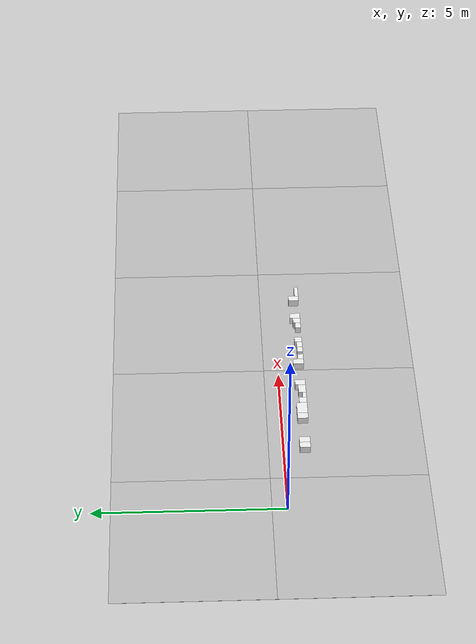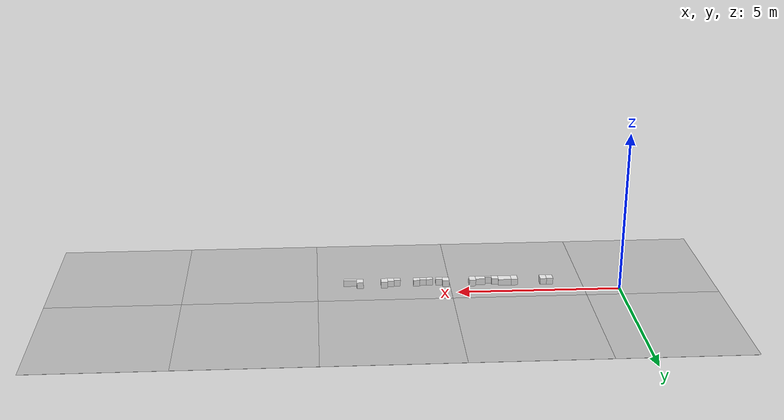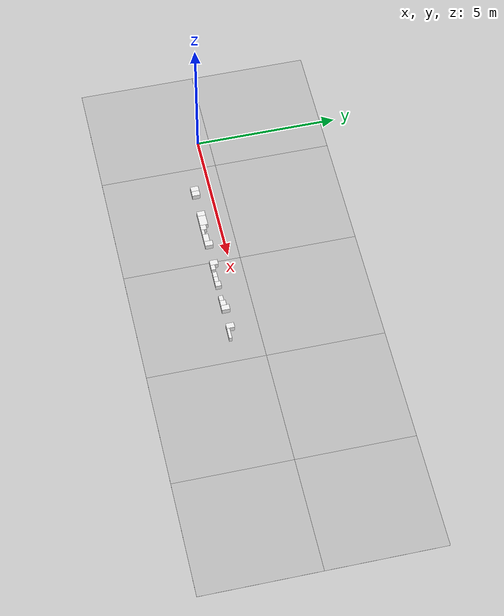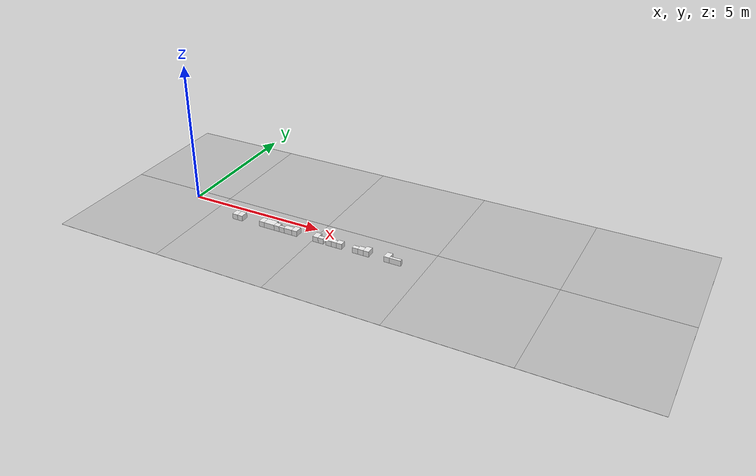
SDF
<sdf version="1.6">
 <world name="default">
  <model name="Tile/0-0">
   <static>1</static>
   <link name="link">
    <collision name="collision">
     <geometry><plane><normal>0 0 1</normal><size>4.096 4.096</size></plane></geometry>
     <surface><friction><ode><mu>100</mu><mu2>50</mu2></ode></friction></surface>
    </collision>
    <visual name="visual">
     <cast_shadows>0</cast_shadows>
     <geometry><plane><normal>0 0 1</normal><size>4.096 4.096</size></plane></geometry>
     <material>
      <script>
       <uri>file://materials/scripts</uri>
       <uri>file://materials/textures</uri>
       <name>Tile/aa44efc093d15b0d016b671cb8dad8b9b5925cd42bc6b331ef31decf4ba6863e</name>
      </script>
      <specular>1 1 1 1</specular>
     </material>
    </visual>
   </link>
   <pose>-0.952 -1.6520000000000001 0 0 -0 0</pose>
  </model>
  <model name="Tile/0-1">
   <static>1</static>
   <link name="link">
    <collision name="collision">
     <geometry><plane><normal>0 0 1</normal><size>4.096 4.096</size></plane></geometry>
     <surface><friction><ode><mu>100</mu><mu2>50</mu2></ode></friction></surface>
    </collision>
    <visual name="visual">
     <cast_shadows>0</cast_shadows>
     <geometry><plane><normal>0 0 1</normal><size>4.096 4.096</size></plane></geometry>
     <material>
      <script>
       <uri>file://materials/scripts</uri>
       <uri>file://materials/textures</uri>
       <name>Tile/6681b896b1587d54cb69aadeb5fb7247b4d6d500490292053e67105ac88ca889</name>
      </script>
      <specular>1 1 1 1</specular>
     </material>
    </visual>
   </link>
   <pose>-0.952 2.444 0 0 -0 0</pose>
  </model>
  <model name="Tile/1-0">
   <static>1</static>
   <link name="link">
    <collision name="collision">
     <geometry><plane><normal>0 0 1</normal><size>4.096 4.096</size></plane></geometry>
     <surface><friction><ode><mu>100</mu><mu2>50</mu2></ode></friction></surface>
    </collision>
    <visual name="visual">
     <cast_shadows>0</cast_shadows>
     <geometry><plane><normal>0 0 1</normal><size>4.096 4.096</size></plane></geometry>
     <material>
      <script>
       <uri>file://materials/scripts</uri>
       <uri>file://materials/textures</uri>
       <name>Tile/067768fed152a856bd9031b7e36a3f99bebca5a5b10e7e607b28bbce7ae49069</name>
      </script>
      <specular>1 1 1 1</specular>
     </material>
    </visual>
   </link>
   <pose>3.144 -1.6520000000000001 0 0 -0 0</pose>
  </model>
  <model name="Tile/1-1">
   <static>1</static>
   <link name="link">
    <collision name="collision">
     <geometry><plane><normal>0 0 1</normal><size>4.096 4.096</size></plane></geometry>
     <surface><friction><ode><mu>100</mu><mu2>50</mu2></ode></friction></surface>
    </collision>
    <visual name="visual">
     <cast_shadows>0</cast_shadows>
     <geometry><plane><normal>0 0 1</normal><size>4.096 4.096</size></plane></geometry>
     <material>
      <script>
       <uri>file://materials/scripts</uri>
       <uri>file://materials/textures</uri>
       <name>Tile/13957a6de1f2afce18d7f1f64dacc2f21295e26ccf498256b0e1a51002cd5706</name>
      </script>
      <specular>1 1 1 1</specular>
     </material>
    </visual>
   </link>
   <pose>3.144 2.444 0 0 -0 0</pose>
  </model>
  <model name="Tile/2-0">
   <static>1</static>
   <link name="link">
    <collision name="collision">
     <geometry><plane><normal>0 0 1</normal><size>4.096 4.096</size></plane></geometry>
     <surface><friction><ode><mu>100</mu><mu2>50</mu2></ode></friction></surface>
    </collision>
    <visual name="visual">
     <cast_shadows>0</cast_shadows>
     <geometry><plane><normal>0 0 1</normal><size>4.096 4.096</size></plane></geometry>
     <material>
      <script>
       <uri>file://materials/scripts</uri>
       <uri>file://materials/textures</uri>
       <name>Tile/e7657f4a61de8bff8be1426595bf344f4a6bc20f63372e82761f2523c6b05b99</name>
      </script>
      <specular>1 1 1 1</specular>
     </material>
    </visual>
   </link>
   <pose>7.24 -1.6520000000000001 0 0 -0 0</pose>
  </model>
  <model name="Tile/2-1">
   <static>1</static>
   <link name="link">
    <collision name="collision">
     <geometry><plane><normal>0 0 1</normal><size>4.096 4.096</size></plane></geometry>
     <surface><friction><ode><mu>100</mu><mu2>50</mu2></ode></friction></surface>
    </collision>
    <visual name="visual">
     <cast_shadows>0</cast_shadows>
     <geometry><plane><normal>0 0 1</normal><size>4.096 4.096</size></plane></geometry>
     <material>
      <script>
       <uri>file://materials/scripts</uri>
       <uri>file://materials/textures</uri>
       <name>Tile/13957a6de1f2afce18d7f1f64dacc2f21295e26ccf498256b0e1a51002cd5706</name>
      </script>
      <specular>1 1 1 1</specular>
     </material>
    </visual>
   </link>
   <pose>7.24 2.444 0 0 -0 0</pose>
  </model>
  <model name="Tile/3-0">
   <static>1</static>
   <link name="link">
    <collision name="collision">
     <geometry><plane><normal>0 0 1</normal><size>4.096 4.096</size></plane></geometry>
     <surface><friction><ode><mu>100</mu><mu2>50</mu2></ode></friction></surface>
    </collision>
    <visual name="visual">
     <cast_shadows>0</cast_shadows>
     <geometry><plane><normal>0 0 1</normal><size>4.096 4.096</size></plane></geometry>
     <material>
      <script>
       <uri>file://materials/scripts</uri>
       <uri>file://materials/textures</uri>
       <name>Tile/9ea4c64e76d6396e83842c66d9e0cf046f2b53fc1970a18100aba851c5b525dc</name>
      </script>
      <specular>1 1 1 1</specular>
     </material>
    </visual>
   </link>
   <pose>11.336 -1.6520000000000001 0 0 -0 0</pose>
  </model>
  <model name="Tile/3-1">
   <static>1</static>
   <link name="link">
    <collision name="collision">
     <geometry><plane><normal>0 0 1</normal><size>4.096 4.096</size></plane></geometry>
     <surface><friction><ode><mu>100</mu><mu2>50</mu2></ode></friction></surface>
    </collision>
    <visual name="visual">
     <cast_shadows>0</cast_shadows>
     <geometry><plane><normal>0 0 1</normal><size>4.096 4.096</size></plane></geometry>
     <material>
      <script>
       <uri>file://materials/scripts</uri>
       <uri>file://materials/textures</uri>
       <name>Tile/9a23bc0f4e214852a2847a84344e8046d230fcc65b31d78c9942eccd3ef414bb</name>
      </script>
      <specular>1 1 1 1</specular>
     </material>
    </visual>
   </link>
   <pose>11.336 2.444 0 0 -0 0</pose>
  </model>
  <model name="Tile/4-0">
   <static>1</static>
   <link name="link">
    <collision name="collision">
     <geometry><plane><normal>0 0 1</normal><size>4.096 4.096</size></plane></geometry>
     <surface><friction><ode><mu>100</mu><mu2>50</mu2></ode></friction></surface>
    </collision>
    <visual name="visual">
     <cast_shadows>0</cast_shadows>
     <geometry><plane><normal>0 0 1</normal><size>4.096 4.096</size></plane></geometry>
     <material>
      <script>
       <uri>file://materials/scripts</uri>
       <uri>file://materials/textures</uri>
       <name>Tile/5eab350b8220ac9944dbdfa4ac3288c7c17e24c3bf5df0dfcf6173d64dae00a1</name>
      </script>
      <specular>1 1 1 1</specular>
     </material>
    </visual>
   </link>
   <pose>15.431999999999999 -1.6520000000000001 0 0 -0 0</pose>
  </model>
  <model name="Tile/4-1">
   <static>1</static>
   <link name="link">
    <collision name="collision">
     <geometry><plane><normal>0 0 1</normal><size>4.096 4.096</size></plane></geometry>
     <surface><friction><ode><mu>100</mu><mu2>50</mu2></ode></friction></surface>
    </collision>
    <visual name="visual">
     <cast_shadows>0</cast_shadows>
     <geometry><plane><normal>0 0 1</normal><size>4.096 4.096</size></plane></geometry>
     <material>
      <script>
       <uri>file://materials/scripts</uri>
       <uri>file://materials/textures</uri>
       <name>Tile/5eab350b8220ac9944dbdfa4ac3288c7c17e24c3bf5df0dfcf6173d64dae00a1</name>
      </script>
      <specular>1 1 1 1</specular>
     </material>
    </visual>
   </link>
   <pose>15.431999999999999 2.444 0 0 -0 0</pose>
  </model>
  <model name="Obstacle/-5/0">
   <pose>2.1 -0.5599999999999999 0.1 0 0 -0.0</pose>
   <link name="link">
    <inertial>
     <mass>10</mass>
     <inertia>
      <ixx>0.166667</ixx>
      <ixy>0</ixy>
      <ixz>0</ixz>
      <iyy>0.166667</iyy>
      <iyz>0</iyz>
      <izz>0.166667</izz>
     </inertia>
    </inertial>
    <collision name="collision"><geometry><box><size>0.2 0.28 0.2</size></box></geometry></collision>
    <visual name="visual">
     <geometry><box><size>0.2 0.28 0.2</size></box></geometry>
     <material>
      <script><name>Gazebo/White</name><uri>file://media/materials/scripts/gazebo.material</uri></script>
     </material>
    </visual>
   </link>
  </model>
  <model name="Obstacle/-9/0">
   <pose>2.3000000000000003 -0.5599999999999999 0.1 0 0 -0.0</pose>
   <link name="link">
    <inertial>
     <mass>10</mass>
     <inertia>
      <ixx>0.166667</ixx>
      <ixy>0</ixy>
      <ixz>0</ixz>
      <iyy>0.166667</iyy>
      <iyz>0</iyz>
      <izz>0.166667</izz>
     </inertia>
    </inertial>
    <collision name="collision"><geometry><box><size>0.2 0.28 0.2</size></box></geometry></collision>
    <visual name="visual">
     <geometry><box><size>0.2 0.28 0.2</size></box></geometry>
     <material>
      <script><name>Gazebo/White</name><uri>file://media/materials/scripts/gazebo.material</uri></script>
     </material>
    </visual>
   </link>
  </model>
  <model name="Obstacle/-16/0">
   <pose>3.2000000000000006 -0.5599999999999999 0.1 0 0 -0.0</pose>
   <link name="link">
    <inertial>
     <mass>10</mass>
     <inertia>
      <ixx>0.166667</ixx>
      <ixy>0</ixy>
      <ixz>0</ixz>
      <iyy>0.166667</iyy>
      <iyz>0</iyz>
      <izz>0.166667</izz>
     </inertia>
    </inertial>
    <collision name="collision"><geometry><box><size>0.2 0.28 0.2</size></box></geometry></collision>
    <visual name="visual">
     <geometry><box><size>0.2 0.28 0.2</size></box></geometry>
     <material>
      <script><name>Gazebo/White</name><uri>file://media/materials/scripts/gazebo.material</uri></script>
     </material>
    </visual>
   </link>
  </model>
  <model name="Obstacle/-20/0">
   <pose>3.500000000000001 -0.5599999999999999 0.1 0 0 -0.0</pose>
   <link name="link">
    <inertial>
     <mass>10</mass>
     <inertia>
      <ixx>0.166667</ixx>
      <ixy>0</ixy>
      <ixz>0</ixz>
      <iyy>0.166667</iyy>
      <iyz>0</iyz>
      <izz>0.166667</izz>
     </inertia>
    </inertial>
    <collision name="collision"><geometry><box><size>0.4 0.28 0.2</size></box></geometry></collision>
    <visual name="visual">
     <geometry><box><size>0.4 0.28 0.2</size></box></geometry>
     <material>
      <script><name>Gazebo/White</name><uri>file://media/materials/scripts/gazebo.material</uri></script>
     </material>
    </visual>
   </link>
  </model>
  <model name="Obstacle/-24/0">
   <pose>3.8000000000000007 -0.6 0.1 0 0 -0.0</pose>
   <link name="link">
    <inertial>
     <mass>10</mass>
     <inertia>
      <ixx>0.166667</ixx>
      <ixy>0</ixy>
      <ixz>0</ixz>
      <iyy>0.166667</iyy>
      <iyz>0</iyz>
      <izz>0.166667</izz>
     </inertia>
    </inertial>
    <collision name="collision"><geometry><box><size>0.2 0.2 0.2</size></box></geometry></collision>
    <visual name="visual">
     <geometry><box><size>0.2 0.2 0.2</size></box></geometry>
     <material>
      <script><name>Gazebo/White</name><uri>file://media/materials/scripts/gazebo.material</uri></script>
     </material>
    </visual>
   </link>
  </model>
  <model name="Obstacle/-28/0">
   <pose>4.000000000000001 -0.6499999999999999 0.1 0 0 -0.0</pose>
   <link name="link">
    <inertial>
     <mass>10</mass>
     <inertia>
      <ixx>0.166667</ixx>
      <ixy>0</ixy>
      <ixz>0</ixz>
      <iyy>0.166667</iyy>
      <iyz>0</iyz>
      <izz>0.166667</izz>
     </inertia>
    </inertial>
    <collision name="collision"><geometry><box><size>0.2 0.1 0.2</size></box></geometry></collision>
    <visual name="visual">
     <geometry><box><size>0.2 0.1 0.2</size></box></geometry>
     <material>
      <script><name>Gazebo/White</name><uri>file://media/materials/scripts/gazebo.material</uri></script>
     </material>
    </visual>
   </link>
  </model>
  <model name="Obstacle/-32/0">
   <pose>4.250000000000001 -0.6 0.1 0 0 -0.0</pose>
   <link name="link">
    <inertial>
     <mass>10</mass>
     <inertia>
      <ixx>0.166667</ixx>
      <ixy>0</ixy>
      <ixz>0</ixz>
      <iyy>0.166667</iyy>
      <iyz>0</iyz>
      <izz>0.166667</izz>
     </inertia>
    </inertial>
    <collision name="collision"><geometry><box><size>0.3 0.2 0.2</size></box></geometry></collision>
    <visual name="visual">
     <geometry><box><size>0.3 0.2 0.2</size></box></geometry>
     <material>
      <script><name>Gazebo/White</name><uri>file://media/materials/scripts/gazebo.material</uri></script>
     </material>
    </visual>
   </link>
  </model>
  <model name="Obstacle/-36/0">
   <pose>4.5 -0.5599999999999999 0.1 0 0 -0.0</pose>
   <link name="link">
    <inertial>
     <mass>10</mass>
     <inertia>
      <ixx>0.166667</ixx>
      <ixy>0</ixy>
      <ixz>0</ixz>
      <iyy>0.166667</iyy>
      <iyz>0</iyz>
      <izz>0.166667</izz>
     </inertia>
    </inertial>
    <collision name="collision"><geometry><box><size>0.2 0.28 0.2</size></box></geometry></collision>
    <visual name="visual">
     <geometry><box><size>0.2 0.28 0.2</size></box></geometry>
     <material>
      <script><name>Gazebo/White</name><uri>file://media/materials/scripts/gazebo.material</uri></script>
     </material>
    </visual>
   </link>
  </model>
  <model name="Obstacle/-43/0">
   <pose>5.33 -0.5599999999999999 0.1 0 0 -0.0</pose>
   <link name="link">
    <inertial>
     <mass>10</mass>
     <inertia>
      <ixx>0.166667</ixx>
      <ixy>0</ixy>
      <ixz>0</ixz>
      <iyy>0.166667</iyy>
      <iyz>0</iyz>
      <izz>0.166667</izz>
     </inertia>
    </inertial>
    <collision name="collision"><geometry><box><size>0.2 0.28 0.2</size></box></geometry></collision>
    <visual name="visual">
     <geometry><box><size>0.2 0.28 0.2</size></box></geometry>
     <material>
      <script><name>Gazebo/White</name><uri>file://media/materials/scripts/gazebo.material</uri></script>
     </material>
    </visual>
   </link>
  </model>
  <model name="Obstacle/-47/0">
   <pose>5.53 -0.625 0.1 0 0 -0.0</pose>
   <link name="link">
    <inertial>
     <mass>10</mass>
     <inertia>
      <ixx>0.166667</ixx>
      <ixy>0</ixy>
      <ixz>0</ixz>
      <iyy>0.166667</iyy>
      <iyz>0</iyz>
      <izz>0.166667</izz>
     </inertia>
    </inertial>
    <collision name="collision"><geometry><box><size>0.2 0.15 0.2</size></box></geometry></collision>
    <visual name="visual">
     <geometry><box><size>0.2 0.15 0.2</size></box></geometry>
     <material>
      <script><name>Gazebo/White</name><uri>file://media/materials/scripts/gazebo.material</uri></script>
     </material>
    </visual>
   </link>
  </model>
  <model name="Obstacle/-54/0">
   <pose>5.83 -0.625 0.1 0 0 -0.0</pose>
   <link name="link">
    <inertial>
     <mass>10</mass>
     <inertia>
      <ixx>0.166667</ixx>
      <ixy>0</ixy>
      <ixz>0</ixz>
      <iyy>0.166667</iyy>
      <iyz>0</iyz>
      <izz>0.166667</izz>
     </inertia>
    </inertial>
    <collision name="collision"><geometry><box><size>0.2 0.15 0.2</size></box></geometry></collision>
    <visual name="visual">
     <geometry><box><size>0.2 0.15 0.2</size></box></geometry>
     <material>
      <script><name>Gazebo/White</name><uri>file://media/materials/scripts/gazebo.material</uri></script>
     </material>
    </visual>
   </link>
  </model>
  <model name="Obstacle/-58/0">
   <pose>6.03 -0.625 0.1 0 0 -0.0</pose>
   <link name="link">
    <inertial>
     <mass>10</mass>
     <inertia>
      <ixx>0.166667</ixx>
      <ixy>0</ixy>
      <ixz>0</ixz>
      <iyy>0.166667</iyy>
      <iyz>0</iyz>
      <izz>0.166667</izz>
     </inertia>
    </inertial>
    <collision name="collision"><geometry><box><size>0.2 0.15 0.2</size></box></geometry></collision>
    <visual name="visual">
     <geometry><box><size>0.2 0.15 0.2</size></box></geometry>
     <material>
      <script><name>Gazebo/White</name><uri>file://media/materials/scripts/gazebo.material</uri></script>
     </material>
    </visual>
   </link>
  </model>
  <model name="Obstacle/-62/0">
   <pose>6.23 -0.6 0.1 0 0 -0.0</pose>
   <link name="link">
    <inertial>
     <mass>10</mass>
     <inertia>
      <ixx>0.166667</ixx>
      <ixy>0</ixy>
      <ixz>0</ixz>
      <iyy>0.166667</iyy>
      <iyz>0</iyz>
      <izz>0.166667</izz>
     </inertia>
    </inertial>
    <collision name="collision"><geometry><box><size>0.2 0.2 0.2</size></box></geometry></collision>
    <visual name="visual">
     <geometry><box><size>0.2 0.2 0.2</size></box></geometry>
     <material>
      <script><name>Gazebo/White</name><uri>file://media/materials/scripts/gazebo.material</uri></script>
     </material>
    </visual>
   </link>
  </model>
  <model name="Obstacle/-69/0">
   <pose>6.830000000000001 -0.625 0.1 0 0 -0.0</pose>
   <link name="link">
    <inertial>
     <mass>10</mass>
     <inertia>
      <ixx>0.166667</ixx>
      <ixy>0</ixy>
      <ixz>0</ixz>
      <iyy>0.166667</iyy>
      <iyz>0</iyz>
      <izz>0.166667</izz>
     </inertia>
    </inertial>
    <collision name="collision"><geometry><box><size>0.2 0.15 0.2</size></box></geometry></collision>
    <visual name="visual">
     <geometry><box><size>0.2 0.15 0.2</size></box></geometry>
     <material>
      <script><name>Gazebo/White</name><uri>file://media/materials/scripts/gazebo.material</uri></script>
     </material>
    </visual>
   </link>
  </model>
  <model name="Obstacle/-73/0">
   <pose>7.030000000000001 -0.6 0.1 0 0 -0.0</pose>
   <link name="link">
    <inertial>
     <mass>10</mass>
     <inertia>
      <ixx>0.166667</ixx>
      <ixy>0</ixy>
      <ixz>0</ixz>
      <iyy>0.166667</iyy>
      <iyz>0</iyz>
      <izz>0.166667</izz>
     </inertia>
    </inertial>
    <collision name="collision"><geometry><box><size>0.2 0.2 0.2</size></box></geometry></collision>
    <visual name="visual">
     <geometry><box><size>0.2 0.2 0.2</size></box></geometry>
     <material>
      <script><name>Gazebo/White</name><uri>file://media/materials/scripts/gazebo.material</uri></script>
     </material>
    </visual>
   </link>
  </model>
  <model name="Obstacle/-77/0">
   <pose>7.230000000000001 -0.5599999999999999 0.1 0 0 -0.0</pose>
   <link name="link">
    <inertial>
     <mass>10</mass>
     <inertia>
      <ixx>0.166667</ixx>
      <ixy>0</ixy>
      <ixz>0</ixz>
      <iyy>0.166667</iyy>
      <iyz>0</iyz>
      <izz>0.166667</izz>
     </inertia>
    </inertial>
    <collision name="collision"><geometry><box><size>0.2 0.28 0.2</size></box></geometry></collision>
    <visual name="visual">
     <geometry><box><size>0.2 0.28 0.2</size></box></geometry>
     <material>
      <script><name>Gazebo/White</name><uri>file://media/materials/scripts/gazebo.material</uri></script>
     </material>
    </visual>
   </link>
  </model>
  <model name="Obstacle/-84/0">
   <pose>7.980000000000001 -0.5599999999999999 0.1 0 0 -0.0</pose>
   <link name="link">
    <inertial>
     <mass>10</mass>
     <inertia>
      <ixx>0.166667</ixx>
      <ixy>0</ixy>
      <ixz>0</ixz>
      <iyy>0.166667</iyy>
      <iyz>0</iyz>
      <izz>0.166667</izz>
     </inertia>
    </inertial>
    <collision name="collision"><geometry><box><size>0.2 0.28 0.2</size></box></geometry></collision>
    <visual name="visual">
     <geometry><box><size>0.2 0.28 0.2</size></box></geometry>
     <material>
      <script><name>Gazebo/White</name><uri>file://media/materials/scripts/gazebo.material</uri></script>
     </material>
    </visual>
   </link>
  </model>
  <model name="Obstacle/-88/0">
   <pose>8.280000000000001 -0.6499999999999999 0.1 0 0 -0.0</pose>
   <link name="link">
    <inertial>
     <mass>10</mass>
     <inertia>
      <ixx>0.166667</ixx>
      <ixy>0</ixy>
      <ixz>0</ixz>
      <iyy>0.166667</iyy>
      <iyz>0</iyz>
      <izz>0.166667</izz>
     </inertia>
    </inertial>
    <collision name="collision"><geometry><box><size>0.4 0.1 0.2</size></box></geometry></collision>
    <visual name="visual">
     <geometry><box><size>0.4 0.1 0.2</size></box></geometry>
     <material>
      <script><name>Gazebo/White</name><uri>file://media/materials/scripts/gazebo.material</uri></script>
     </material>
    </visual>
   </link>
  </model>
 </world>
</sdf>
